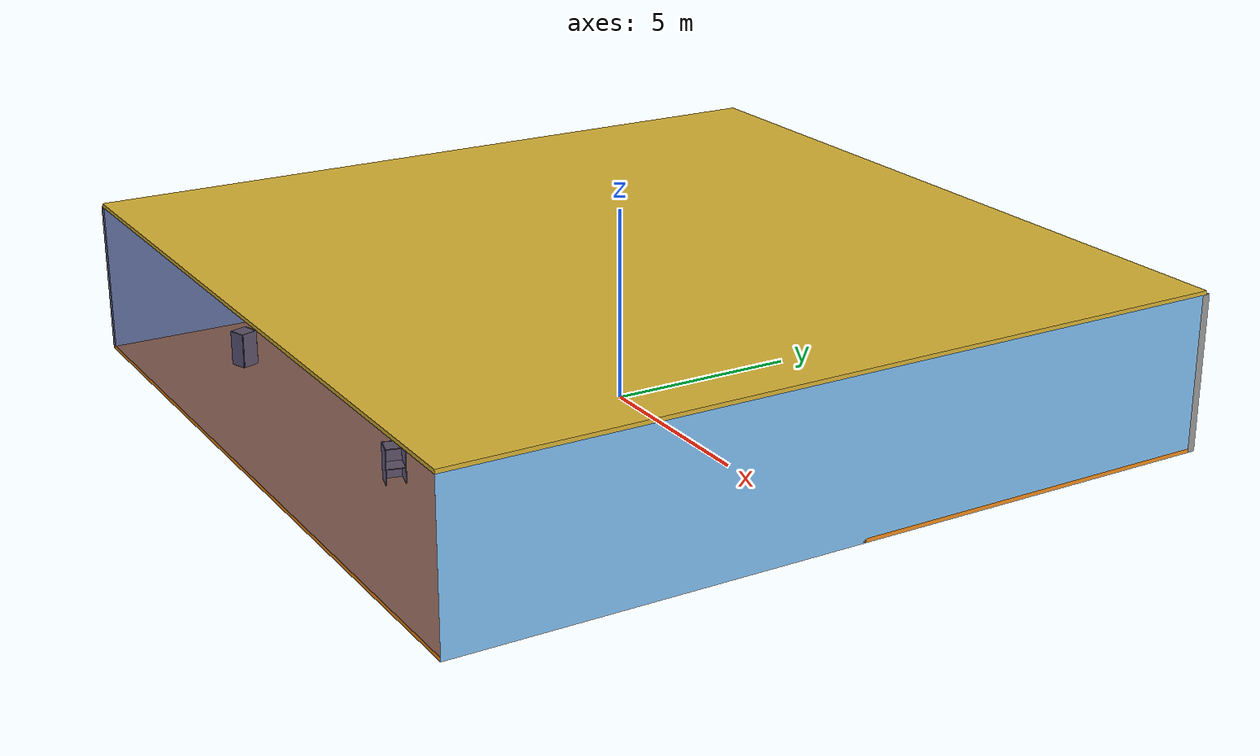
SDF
<sdf version="1.4">
 <world name="default">
  <physics type="ode">
   <max_step_size>0.001</max_step_size>
   <real_time_factor>1</real_time_factor>
   <real_time_update_rate>1000</real_time_update_rate>
   <gravity>0 0 -9.8</gravity>
  </physics>
  <scene><ambient>0.4 0.4 0.4 1</ambient><background>0.7 0.7 0.7 1</background><shadows>1</shadows></scene>
  <model name="Surrounding">
   <static>1</static>
   <link name="Ceiling">
    <collision name="Ceiling_Collision"><geometry><box><size>20 20 0.1</size></box></geometry></collision>
    <visual name="Ceiling_Visual">
     <geometry><box><size>20 20 0.1</size></box></geometry>
     <material>
      <script><uri>file://media/materials/scripts/gazebo.material</uri><name>Gazebo/Gold</name></script>
     </material>
    </visual>
    <pose>0 0 4.05 0 0 0</pose>
   </link>
   <link name="Wall_South">
    <collision name="Wall_South_Collision">
     <geometry><box><size>20 0 4</size></box></geometry>
     <pose>0 0 2 0 -0 0</pose>
    </collision>
    <visual name="Wall_South_Visual">
     <pose>0 0 2 0 -0 0</pose>
     <geometry><box><size>20 0 4</size></box></geometry>
     <material>
      <script><uri>file://media/materials/scripts/gazebo.material</uri><name>Gazebo/BlueTransparent</name></script>
     </material>
    </visual>
    <velocity_decay><linear>0</linear><angular>0</angular></velocity_decay>
    <pose>0 -10 0 0 -0 0</pose>
   </link>
   <link name="Wall_East">
    <collision name="Wall_21_Collision">
     <geometry><box><size>20 0 4</size></box></geometry>
     <pose>0 0 2 0 -0 0</pose>
    </collision>
    <visual name="Wall_21_Visual">
     <pose>0 0 2 0 -0 0</pose>
     <geometry><box><size>20 0 4</size></box></geometry>
     <material>
      <script><uri>file://media/materials/scripts/gazebo.material</uri><name>Gazebo/SkyBlue</name></script>
     </material>
    </visual>
    <velocity_decay><linear>0</linear><angular>0</angular></velocity_decay>
    <pose>10 0 0 0 -0 1.5708</pose>
   </link>
   <link name="Wall_North">
    <collision name="Wall_22_Collision">
     <geometry><box><size>20 0.2 4</size></box></geometry>
     <pose>0 0 2 0 -0 0</pose>
    </collision>
    <visual name="Wall_22_Visual">
     <pose>0 0 2 0 -0 0</pose>
     <geometry><box><size>20 0.2 4</size></box></geometry>
     <material>
      <script><uri>file://media/materials/scripts/gazebo.material</uri><name>Gazebo/GreyGradientSky</name></script>
     </material>
    </visual>
    <velocity_decay><linear>0</linear><angular>0</angular></velocity_decay>
    <pose>0 10 0 0 -0 0</pose>
   </link>
   <link name="Wall_West">
    <collision name="Wall_23_Collision">
     <geometry><box><size>20 0.2 4</size></box></geometry>
     <pose>0 0 2 0 -0 0</pose>
    </collision>
    <visual name="Wall_23_Visual">
     <pose>0 0 2 0 -0 0</pose>
     <geometry><box><size>20 0.2 4</size></box></geometry>
     <material>
      <script><uri>file://media/materials/scripts/gazebo.material</uri><name>Gazebo/LightOn</name></script>
     </material>
    </visual>
    <velocity_decay><linear>0</linear><angular>0</angular></velocity_decay>
    <pose>-10 0 0 0 0 -1.5708</pose>
   </link>
   <link name="Ground_link">
    <collision name="collision">
     <pose>0 0 .05 0 -0 0</pose>
     <geometry><box><size>20 20 0.1</size></box></geometry>
    </collision>
    <visual name="visual">
     <pose>0 0 .05 0 -0 0</pose>
     <geometry><box><size>20 20 0.1</size></box></geometry>
     <material>
      <script><uri>file://media/materials/scripts/gazebo.material</uri><name>Gazebo/Orange</name></script>
     </material>
    </visual>
   </link>
   <static>1</static>
  </model>
  <spherical_coordinates>
   <surface_model>EARTH_WGS84</surface_model>
   <latitude_deg>0</latitude_deg>
   <longitude_deg>0</longitude_deg>
   <elevation>0</elevation>
   <heading_deg>0</heading_deg>
  </spherical_coordinates>
  <light name="lightball_0" type="diffuse">
   <diffuse>0.8 0.8 0.8 1</diffuse>
   <specular>0.2 0.2 0.2 1</specular>
   <attenuation>
    <range>100</range>
    <constant>0.7</constant>
    <linear>0.01</linear>
    <quadratic>0.001</quadratic>
   </attenuation>
   <direction>-0.5 0.1 -0.9</direction>
   <pose>-7.52174734093 4.24648866659 0.542772064653 0 0 0</pose>
  </light>
  <light name="lightball_1" type="diffuse">
   <diffuse>0.8 0.8 0.8 1</diffuse>
   <specular>0.2 0.2 0.2 1</specular>
   <attenuation>
    <range>100</range>
    <constant>0.7</constant>
    <linear>0.01</linear>
    <quadratic>0.001</quadratic>
   </attenuation>
   <direction>-0.5 0.1 -0.9</direction>
   <pose>-9.58036638788 7.52038408068 2.27658269556 0 0 0</pose>
  </light>
  <light name="lightball_2" type="diffuse">
   <diffuse>0.8 0.8 0.8 1</diffuse>
   <specular>0.2 0.2 0.2 1</specular>
   <attenuation>
    <range>100</range>
    <constant>0.7</constant>
    <linear>0.01</linear>
    <quadratic>0.001</quadratic>
   </attenuation>
   <direction>-0.5 0.1 -0.9</direction>
   <pose>-0.678397509416 -6.55754143564 1.37913217074 0 0 0</pose>
  </light>
  <light name="lightball_3" type="diffuse">
   <diffuse>0.8 0.8 0.8 1</diffuse>
   <specular>0.2 0.2 0.2 1</specular>
   <attenuation>
    <range>100</range>
    <constant>0.7</constant>
    <linear>0.01</linear>
    <quadratic>0.001</quadratic>
   </attenuation>
   <direction>-0.5 0.1 -0.9</direction>
   <pose>-7.94141492154 -5.08182522937 2.61209988009 0 0 0</pose>
  </light>
  <light name="lightball_4" type="diffuse">
   <diffuse>0.8 0.8 0.8 1</diffuse>
   <specular>0.2 0.2 0.2 1</specular>
   <attenuation>
    <range>100</range>
    <constant>0.7</constant>
    <linear>0.01</linear>
    <quadratic>0.001</quadratic>
   </attenuation>
   <direction>-0.5 0.1 -0.9</direction>
   <pose>1.94841652022 3.58387828269 1.80765372327 0 0 0</pose>
  </light>
  <light name="lightball_5" type="diffuse">
   <diffuse>0.8 0.8 0.8 1</diffuse>
   <specular>0.2 0.2 0.2 1</specular>
   <attenuation>
    <range>100</range>
    <constant>0.7</constant>
    <linear>0.01</linear>
    <quadratic>0.001</quadratic>
   </attenuation>
   <direction>-0.5 0.1 -0.9</direction>
   <pose>-0.411116602048 -8.17019939669 1.71524959067 0 0 0</pose>
  </light>
  <light name="lightball_6" type="diffuse">
   <diffuse>0.8 0.8 0.8 1</diffuse>
   <specular>0.2 0.2 0.2 1</specular>
   <attenuation>
    <range>100</range>
    <constant>0.7</constant>
    <linear>0.01</linear>
    <quadratic>0.001</quadratic>
   </attenuation>
   <direction>-0.5 0.1 -0.9</direction>
   <pose>-2.28858715481 -9.08334161382 0.687197922434 0 0 0</pose>
  </light>
  <light name="lightball_7" type="diffuse">
   <diffuse>0.8 0.8 0.8 1</diffuse>
   <specular>0.2 0.2 0.2 1</specular>
   <attenuation>
    <range>100</range>
    <constant>0.7</constant>
    <linear>0.01</linear>
    <quadratic>0.001</quadratic>
   </attenuation>
   <direction>-0.5 0.1 -0.9</direction>
   <pose>0.481318382509 -7.63990496189 1.64926349751 0 0 0</pose>
  </light>
  <light name="lightball_8" type="diffuse">
   <diffuse>0.8 0.8 0.8 1</diffuse>
   <specular>0.2 0.2 0.2 1</specular>
   <attenuation>
    <range>100</range>
    <constant>0.7</constant>
    <linear>0.01</linear>
    <quadratic>0.001</quadratic>
   </attenuation>
   <direction>-0.5 0.1 -0.9</direction>
   <pose>-4.53778625358 4.04484262191 3.28030295073 0 0 0</pose>
  </light>
  <light name="lightball_9" type="diffuse">
   <diffuse>0.8 0.8 0.8 1</diffuse>
   <specular>0.2 0.2 0.2 1</specular>
   <attenuation>
    <range>100</range>
    <constant>0.7</constant>
    <linear>0.01</linear>
    <quadratic>0.001</quadratic>
   </attenuation>
   <direction>-0.5 0.1 -0.9</direction>
   <pose>-0.302944599519 -0.311879318214 3.87378339042 0 0 0</pose>
  </light>
  <include><uri>model://cabinet</uri><pose>-6.89537609505 -7.45565949579 0 0 0 0.338288878299</pose></include>
  <include><uri>model://cabinet</uri><pose>-7.95408456415 -1.91653887522 0 0 0 3.13606262961</pose></include>
  <include><uri>model://cabinet</uri><pose>-4.42914914218 8.21560609002 0 0 0 1.4887194773</pose></include>
  <include><uri>model://table</uri><pose>-1.51575699189 6.94966818829 0 0 0 3.0373322042</pose></include>
  <include><uri>model://cabinet</uri><pose>1.99880441141 -7.25256001823 0 0 0 2.89270233262</pose></include>
  <include>
   <uri>model://construction_cone</uri>
   <pose>2.03667223102 -3.99682902946 0 0 0 0.887134475001</pose>
  </include>
 </world>
</sdf>

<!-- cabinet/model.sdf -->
<sdf version="1.5">
  <model name="cabinet">
    <static>true</static>
    <link name="cabinet_bottom_plate">
      <inertial>
        <pose>0 0 -1 0 0 0</pose>
        <inertia>
          <ixx>2.050000</ixx>
          <ixy>0</ixy>
          <ixz>0</ixz>
          <iyy>2.050000</iyy>
          <iyz>0</iyz>
          <izz>2.050000</izz>
        </inertia>
        <mass>25.000000</mass>
      </inertial>
      <collision name="cabinet_bottom_plate_geom">
        <pose>0 0 0.010000 0 0 0</pose>
        <geometry>
          <box>
            <size>0.450000 0.450000 0.020000</size>
          </box>
        </geometry>
      </collision>
      <visual name="cabinet_bottom_plate_geom_visual">
        <pose>0 0 0.010000 0 0 0</pose>
        <geometry>
          <box>
            <size>0.450000 0.450000 0.020000</size>
          </box>
        </geometry>
        <material>
          <script>
            <uri>model://media/materials/scripts/gazebo.material</uri>
            <name>Gazebo/Wood</name>
          </script>
        </material>
      </visual>
      <collision name="cabinet_bottom_plate_geom_cabinet_back_plate">
        <pose>0.235000 0 0.510000 0 0 0</pose>
        <geometry>
          <box>
            <size>0.020000 0.450000 1.020000</size>
          </box>
        </geometry>
      </collision>
      <visual name="cabinet_bottom_plate_geom_cabinet_back_plate_visual">
        <pose>0.235000 0 0.510000 0 0 0</pose>
        <geometry>
          <box>
            <size>0.020000 0.450000 1.020000</size>
          </box>
        </geometry>
        <material>
          <script>
            <uri>model://media/materials/scripts/gazebo.material</uri>
            <name>Gazebo/Wood</name>
          </script>
        </material>
      </visual>
      <collision name="cabinet_bottom_plate_geom_cabinet_left_plate">
        <pose>0 0.235000 0.510000 0 0 0</pose>
        <geometry>
          <box>
            <size>0.450000 0.020000 1.020000</size>
          </box>
        </geometry>
      </collision>
      <visual name="cabinet_bottom_plate_geom_cabinet_left_plate_visual">
        <pose>0 0.235000 0.510000 0 0 0</pose>
        <geometry>
          <box>
            <size>0.450000 0.020000 1.020000</size>
          </box>
        </geometry>
        <material>
          <script>
            <uri>model://media/materials/scripts/gazebo.material</uri>
            <name>Gazebo/Wood</name>
          </script>
        </material>
      </visual>
      <collision name="cabinet_bottom_plate_geom_cabinet_middle_plate">
        <pose>0 0 0.510000 0 0 0</pose>
        <geometry>
          <box>
            <size>0.450000 0.450000 0.020000</size>
          </box>
        </geometry>
      </collision>
      <visual name="cabinet_bottom_plate_geom_cabinet_middle_plate_visual">
        <pose>0 0 0.510000 0 0 0</pose>
        <geometry>
          <box>
            <size>0.450000 0.450000 0.020000</size>
          </box>
        </geometry>
        <material>
          <script>
            <uri>model://media/materials/scripts/gazebo.material</uri>
            <name>Gazebo/Wood</name>
          </script>
        </material>
      </visual>
      <collision name="cabinet_bottom_plate_geom_cabinet_right_plate">
        <pose>0 -0.235000 0.510000 0 0 0</pose>
        <geometry>
          <box>
            <size>0.450000 0.020000 1.020000</size>
          </box>
        </geometry>
      </collision>
      <visual name="cabinet_bottom_plate_geom_cabinet_right_plate_visual">
        <pose>0 -0.235000 0.510000 0 0 0</pose>
        <geometry>
          <box>
            <size>0.450000 0.020000 1.020000</size>
          </box>
        </geometry>
        <material>
          <script>
            <uri>model://media/materials/scripts/gazebo.material</uri>
            <name>Gazebo/Wood</name>
          </script>
        </material>
      </visual>
      <collision name="cabinet_bottom_plate_geom_cabinet_top_plate">
        <pose>0 0 1.010000 0 0 0</pose>
        <geometry>
          <box>
            <size>0.450000 0.450000 0.020000</size>
          </box>
        </geometry>
      </collision>
      <visual name="cabinet_bottom_plate_geom_cabinet_top_plate_visual">
        <pose>0 0 1.010000 0 0 0</pose>
        <geometry>
          <box>
            <size>0.450000 0.450000 0.020000</size>
          </box>
        </geometry>
        <material>
          <script>
            <uri>model://media/materials/scripts/gazebo.material</uri>
            <name>Gazebo/Wood</name>
          </script>
        </material>
      </visual>
    </link>
  </model>
</sdf>

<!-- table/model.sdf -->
<sdf version="1.5">
  <model name="table">
    <static>true</static>
    <link name="link">
      <collision name="surface">
        <pose>0 0 1.0 0 0 0</pose>
        <geometry>
          <box>
            <size>1.5 0.8 0.03</size>
          </box>
        </geometry>
        <surface>
          <friction>
            <ode>
              <mu>0.6</mu>
              <mu2>0.6</mu2>
            </ode>
          </friction>
        </surface>
      </collision>
      <visual name="visual1">
        <pose>0 0 1.0 0 0 0</pose>
        <geometry>
          <box>
            <size>1.5 0.8 0.03</size>
          </box>
        </geometry>
        <material>
          <script>
            <uri>model://media/materials/scripts/gazebo.material</uri>
            <name>Gazebo/Wood</name>
          </script>
        </material>
      </visual>
      <collision name="front_left_leg">
        <pose>0.68 0.38 0.5 0 0 0</pose>
        <geometry>
          <cylinder>
            <radius>0.02</radius>
            <length>1.0</length>
          </cylinder>
        </geometry>
      </collision>
      <visual name="front_left_leg">
        <pose>0.68 0.38 0.5 0 0 0</pose>
        <geometry>
          <cylinder>
            <radius>0.02</radius>
            <length>1.0</length>
          </cylinder>
        </geometry>
        <material>
          <script>
            <uri>model://media/materials/scripts/gazebo.material</uri>
            <name>Gazebo/Grey</name>
          </script>
        </material>
      </visual>
      <collision name="front_right_leg">
        <pose>0.68 -0.38 0.5 0 0 0</pose>
        <geometry>
          <cylinder>
            <radius>0.02</radius>
            <length>1.0</length>
          </cylinder>
        </geometry>
      </collision>
      <visual name="front_right_leg">
        <pose>0.68 -0.38 0.5 0 0 0</pose>
        <geometry>
          <cylinder>
            <radius>0.02</radius>
            <length>1.0</length>
          </cylinder>
        </geometry>
        <material>
          <script>
            <uri>model://media/materials/scripts/gazebo.material</uri>
            <name>Gazebo/Grey</name>
          </script>
        </material>
      </visual>
      <collision name="back_right_leg">
        <pose>-0.68 -0.38 0.5 0 0 0</pose>
        <geometry>
          <cylinder>
            <radius>0.02</radius>
            <length>1.0</length>
          </cylinder>
        </geometry>
      </collision>
      <visual name="back_right_leg">
        <pose>-0.68 -0.38 0.5 0 0 0</pose>
        <geometry>
          <cylinder>
            <radius>0.02</radius>
            <length>1.0</length>
          </cylinder>
        </geometry>
        <material>
          <script>
            <uri>model://media/materials/scripts/gazebo.material</uri>
            <name>Gazebo/Grey</name>
          </script>
        </material>
      </visual>
      <collision name="back_left_leg">
        <pose>-0.68 0.38 0.5 0 0 0</pose>
        <geometry>
          <cylinder>
            <radius>0.02</radius>
            <length>1.0</length>
          </cylinder>
        </geometry>
      </collision>
      <visual name="back_left_leg">
        <pose>-0.68 0.38 0.5 0 0 0</pose>
        <geometry>
          <cylinder>
            <radius>0.02</radius>
            <length>1.0</length>
          </cylinder>
        </geometry>
        <material>
          <script>
            <uri>model://media/materials/scripts/gazebo.material</uri>
            <name>Gazebo/Grey</name>
          </script>
        </material>
      </visual>
    </link>
  </model>
</sdf>

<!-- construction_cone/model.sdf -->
<sdf version="1.5">
  <model name="Construction Cone">
    <link name="link">
      <collision name="collision">
        <geometry>
          <mesh>
            <scale>10 10 10</scale>
            <uri>file://isr-testbed/construction_cone/meshes/construction_cone.dae</uri>
          </mesh>
        </geometry>
      </collision>
      <visual name="visual">
        <geometry>
          <mesh>
            <scale>10 10 10</scale>
            <uri>file://isr-testbed/construction_cone/meshes/construction_cone.dae</uri>
          </mesh>
        </geometry>
      </visual>
    </link>
  </model>
</sdf>
